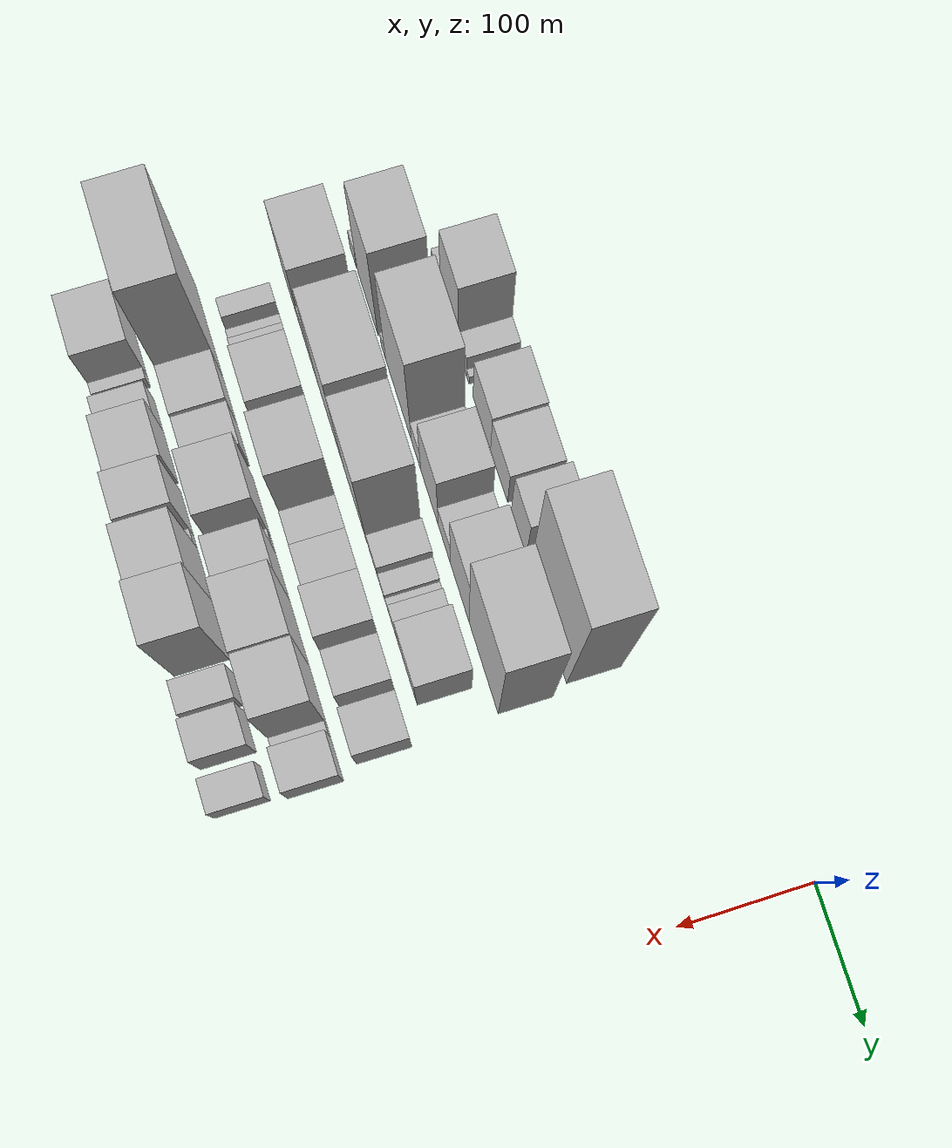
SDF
<sdf version="1.6">
 <world name="default">
  <model name="building_13">
   <static>1</static>
   <pose>100.0000 -490.0989 0 0.000000 0.000000 0.000000</pose>
   <link name="link">
    <pose>0 0 19.50 0 0 0</pose>
    <collision name="collision"><geometry><box><size>40.0000 22.4042 39.0000</size></box></geometry></collision>
    <visual name="visual">
     <cast_shadows>0</cast_shadows>
     <geometry><box><size>40.0000 22.4042 39.0000</size></box></geometry>
     <material>
      <script>
       <uri>model://HANNAS_wall/materials/scripts</uri>
       <uri>model://HANNAS_wall/materials/textures</uri>
       <name>vrc/HANNAS_wall</name>
      </script>
     </material>
    </visual>
   </link>
  </model>
  <model name="building_14">
   <static>1</static>
   <pose>100.0000 -457.5138 0 0.000000 0.000000 0.000000</pose>
   <link name="link">
    <pose>0 0 60.00 0 0 0</pose>
    <collision name="collision"><geometry><box><size>40.0000 42.7660 120.0000</size></box></geometry></collision>
    <visual name="visual">
     <cast_shadows>0</cast_shadows>
     <geometry><box><size>40.0000 42.7660 120.0000</size></box></geometry>
     <material>
      <script>
       <uri>model://HANNAS_wall/materials/scripts</uri>
       <uri>model://HANNAS_wall/materials/textures</uri>
       <name>vrc/HANNAS_wall</name>
      </script>
     </material>
    </visual>
   </link>
  </model>
  <model name="building_15">
   <static>1</static>
   <pose>100.0000 -426.2130 0 0.000000 0.000000 0.000000</pose>
   <link name="link">
    <pose>0 0 19.50 0 0 0</pose>
    <collision name="collision"><geometry><box><size>40.0000 19.8356 39.0000</size></box></geometry></collision>
    <visual name="visual">
     <cast_shadows>0</cast_shadows>
     <geometry><box><size>40.0000 19.8356 39.0000</size></box></geometry>
     <material>
      <script>
       <uri>model://HANNAS_wall/materials/scripts</uri>
       <uri>model://HANNAS_wall/materials/textures</uri>
       <name>vrc/HANNAS_wall</name>
      </script>
     </material>
    </visual>
   </link>
  </model>
  <model name="building_16">
   <static>1</static>
   <pose>100.0000 -413.1849 0 0.000000 0.000000 0.000000</pose>
   <link name="link">
    <pose>0 0 7.50 0 0 0</pose>
    <collision name="collision"><geometry><box><size>40.0000 6.2205 15.0000</size></box></geometry></collision>
    <visual name="visual">
     <cast_shadows>0</cast_shadows>
     <geometry><box><size>40.0000 6.2205 15.0000</size></box></geometry>
     <material>
      <script>
       <uri>model://HANNAS_wall/materials/scripts</uri>
       <uri>model://HANNAS_wall/materials/textures</uri>
       <name>vrc/HANNAS_wall</name>
      </script>
     </material>
    </visual>
   </link>
  </model>
  <model name="building_17">
   <static>1</static>
   <pose>100.0000 -379.1809 0 0.000000 0.000000 0.000000</pose>
   <link name="link">
    <pose>0 0 37.50 0 0 0</pose>
    <collision name="collision"><geometry><box><size>40.0000 41.7877 75.0000</size></box></geometry></collision>
    <visual name="visual">
     <cast_shadows>0</cast_shadows>
     <geometry><box><size>40.0000 41.7877 75.0000</size></box></geometry>
     <material>
      <script>
       <uri>model://HANNAS_wall/materials/scripts</uri>
       <uri>model://HANNAS_wall/materials/textures</uri>
       <name>vrc/HANNAS_wall</name>
      </script>
     </material>
    </visual>
   </link>
  </model>
  <model name="building_18">
   <static>1</static>
   <pose>100.0000 -338.1877 0 0.000000 0.000000 0.000000</pose>
   <link name="link">
    <pose>0 0 34.50 0 0 0</pose>
    <collision name="collision"><geometry><box><size>40.0000 40.1987 69.0000</size></box></geometry></collision>
    <visual name="visual">
     <cast_shadows>0</cast_shadows>
     <geometry><box><size>40.0000 40.1987 69.0000</size></box></geometry>
     <material>
      <script>
       <uri>model://HANNAS_wall/materials/scripts</uri>
       <uri>model://HANNAS_wall/materials/textures</uri>
       <name>vrc/HANNAS_wall</name>
      </script>
     </material>
    </visual>
   </link>
  </model>
  <model name="building_19">
   <static>1</static>
   <pose>100.0000 -292.8029 0 0.000000 0.000000 0.000000</pose>
   <link name="link">
    <pose>0 0 46.50 0 0 0</pose>
    <collision name="collision"><geometry><box><size>40.0000 34.5709 93.0000</size></box></geometry></collision>
    <visual name="visual">
     <cast_shadows>0</cast_shadows>
     <geometry><box><size>40.0000 34.5709 93.0000</size></box></geometry>
     <material>
      <script>
       <uri>model://HANNAS_wall/materials/scripts</uri>
       <uri>model://HANNAS_wall/materials/textures</uri>
       <name>vrc/HANNAS_wall</name>
      </script>
     </material>
    </visual>
   </link>
  </model>
  <model name="building_20">
   <static>1</static>
   <pose>100.0000 -270.9125 0 0.000000 0.000000 0.000000</pose>
   <link name="link">
    <pose>0 0 10.50 0 0 0</pose>
    <collision name="collision"><geometry><box><size>40.0000 9.2098 21.0000</size></box></geometry></collision>
    <visual name="visual">
     <cast_shadows>0</cast_shadows>
     <geometry><box><size>40.0000 9.2098 21.0000</size></box></geometry>
     <material>
      <script>
       <uri>model://HANNAS_wall/materials/scripts</uri>
       <uri>model://HANNAS_wall/materials/textures</uri>
       <name>vrc/HANNAS_wall</name>
      </script>
     </material>
    </visual>
   </link>
  </model>
  <model name="building_21">
   <static>1</static>
   <pose>100.0000 -223.9992 0 0.000000 0.000000 0.000000</pose>
   <link name="link">
    <pose>0 0 112.50 0 0 0</pose>
    <collision name="collision"><geometry><box><size>40.0000 84.6168 225.0000</size></box></geometry></collision>
    <visual name="visual">
     <cast_shadows>0</cast_shadows>
     <geometry><box><size>40.0000 84.6168 225.0000</size></box></geometry>
     <material>
      <script>
       <uri>model://HANNAS_wall/materials/scripts</uri>
       <uri>model://HANNAS_wall/materials/textures</uri>
       <name>vrc/HANNAS_wall</name>
      </script>
     </material>
    </visual>
   </link>
  </model>
  <model name="building_65">
   <static>1</static>
   <pose>152.0000 -527.2668 0 0.000000 0.000000 0.000000</pose>
   <link name="link">
    <pose>0 0 15.00 0 0 0</pose>
    <collision name="collision"><geometry><box><size>40.0000 16.8397 30.0000</size></box></geometry></collision>
    <visual name="visual">
     <cast_shadows>0</cast_shadows>
     <geometry><box><size>40.0000 16.8397 30.0000</size></box></geometry>
     <material>
      <script>
       <uri>model://HANNAS_wall/materials/scripts</uri>
       <uri>model://HANNAS_wall/materials/textures</uri>
       <name>vrc/HANNAS_wall</name>
      </script>
     </material>
    </visual>
   </link>
  </model>
  <model name="building_66">
   <static>1</static>
   <pose>152.0000 -490.2607 0 0.000000 0.000000 0.000000</pose>
   <link name="link">
    <pose>0 0 75.00 0 0 0</pose>
    <collision name="collision"><geometry><box><size>40.0000 51.1725 150.0000</size></box></geometry></collision>
    <visual name="visual">
     <cast_shadows>0</cast_shadows>
     <geometry><box><size>40.0000 51.1725 150.0000</size></box></geometry>
     <material>
      <script>
       <uri>model://HANNAS_wall/materials/scripts</uri>
       <uri>model://HANNAS_wall/materials/textures</uri>
       <name>vrc/HANNAS_wall</name>
      </script>
     </material>
    </visual>
   </link>
  </model>
  <model name="building_67">
   <static>1</static>
   <pose>152.0000 -450.9133 0 0.000000 0.000000 0.000000</pose>
   <link name="link">
    <pose>0 0 13.50 0 0 0</pose>
    <collision name="collision"><geometry><box><size>40.0000 11.5222 27.0000</size></box></geometry></collision>
    <visual name="visual">
     <cast_shadows>0</cast_shadows>
     <geometry><box><size>40.0000 11.5222 27.0000</size></box></geometry>
     <material>
      <script>
       <uri>model://HANNAS_wall/materials/scripts</uri>
       <uri>model://HANNAS_wall/materials/textures</uri>
       <name>vrc/HANNAS_wall</name>
      </script>
     </material>
    </visual>
   </link>
  </model>
  <model name="building_68">
   <static>1</static>
   <pose>152.0000 -413.4610 0 0.000000 0.000000 0.000000</pose>
   <link name="link">
    <pose>0 0 82.50 0 0 0</pose>
    <collision name="collision"><geometry><box><size>40.0000 63.3824 165.0000</size></box></geometry></collision>
    <visual name="visual">
     <cast_shadows>0</cast_shadows>
     <geometry><box><size>40.0000 63.3824 165.0000</size></box></geometry>
     <material>
      <script>
       <uri>model://HANNAS_wall/materials/scripts</uri>
       <uri>model://HANNAS_wall/materials/textures</uri>
       <name>vrc/HANNAS_wall</name>
      </script>
     </material>
    </visual>
   </link>
  </model>
  <model name="building_69">
   <static>1</static>
   <pose>152.0000 -370.2646 0 0.000000 0.000000 0.000000</pose>
   <link name="link">
    <pose>0 0 22.50 0 0 0</pose>
    <collision name="collision"><geometry><box><size>40.0000 23.0104 45.0000</size></box></geometry></collision>
    <visual name="visual">
     <cast_shadows>0</cast_shadows>
     <geometry><box><size>40.0000 23.0104 45.0000</size></box></geometry>
     <material>
      <script>
       <uri>model://HANNAS_wall/materials/scripts</uri>
       <uri>model://HANNAS_wall/materials/textures</uri>
       <name>vrc/HANNAS_wall</name>
      </script>
     </material>
    </visual>
   </link>
  </model>
  <model name="building_70">
   <static>1</static>
   <pose>152.0000 -337.6851 0 0.000000 0.000000 0.000000</pose>
   <link name="link">
    <pose>0 0 57.00 0 0 0</pose>
    <collision name="collision"><geometry><box><size>40.0000 42.1486 114.0000</size></box></geometry></collision>
    <visual name="visual">
     <cast_shadows>0</cast_shadows>
     <geometry><box><size>40.0000 42.1486 114.0000</size></box></geometry>
     <material>
      <script>
       <uri>model://HANNAS_wall/materials/scripts</uri>
       <uri>model://HANNAS_wall/materials/textures</uri>
       <name>vrc/HANNAS_wall</name>
      </script>
     </material>
    </visual>
   </link>
  </model>
  <model name="building_71">
   <static>1</static>
   <pose>152.0000 -301.9021 0 0.000000 0.000000 0.000000</pose>
   <link name="link">
    <pose>0 0 25.50 0 0 0</pose>
    <collision name="collision"><geometry><box><size>40.0000 29.4174 51.0000</size></box></geometry></collision>
    <visual name="visual">
     <cast_shadows>0</cast_shadows>
     <geometry><box><size>40.0000 29.4174 51.0000</size></box></geometry>
     <material>
      <script>
       <uri>model://HANNAS_wall/materials/scripts</uri>
       <uri>model://HANNAS_wall/materials/textures</uri>
       <name>vrc/HANNAS_wall</name>
      </script>
     </material>
    </visual>
   </link>
  </model>
  <model name="building_72">
   <static>1</static>
   <pose>152.0000 -265.4291 0 0.000000 0.000000 0.000000</pose>
   <link name="link">
    <pose>0 0 63.00 0 0 0</pose>
    <collision name="collision"><geometry><box><size>40.0000 43.5286 126.0000</size></box></geometry></collision>
    <visual name="visual">
     <cast_shadows>0</cast_shadows>
     <geometry><box><size>40.0000 43.5286 126.0000</size></box></geometry>
     <material>
      <script>
       <uri>model://HANNAS_wall/materials/scripts</uri>
       <uri>model://HANNAS_wall/materials/textures</uri>
       <name>vrc/HANNAS_wall</name>
      </script>
     </material>
    </visual>
   </link>
  </model>
  <model name="building_73">
   <static>1</static>
   <pose>152.0000 -209.6130 0 0.000000 0.000000 0.000000</pose>
   <link name="link">
    <pose>0 0 99.00 0 0 0</pose>
    <collision name="collision"><geometry><box><size>40.0000 68.1036 198.0000</size></box></geometry></collision>
    <visual name="visual">
     <cast_shadows>0</cast_shadows>
     <geometry><box><size>40.0000 68.1036 198.0000</size></box></geometry>
     <material>
      <script>
       <uri>model://HANNAS_wall/materials/scripts</uri>
       <uri>model://HANNAS_wall/materials/textures</uri>
       <name>vrc/HANNAS_wall</name>
      </script>
     </material>
    </visual>
   </link>
  </model>
  <model name="building_114">
   <static>1</static>
   <pose>204.0000 -502.0832 0 0.000000 0.000000 0.000000</pose>
   <link name="link">
    <pose>0 0 66.00 0 0 0</pose>
    <collision name="collision"><geometry><box><size>40.0000 50.5782 132.0000</size></box></geometry></collision>
    <visual name="visual">
     <cast_shadows>0</cast_shadows>
     <geometry><box><size>40.0000 50.5782 132.0000</size></box></geometry>
     <material>
      <script>
       <uri>model://HANNAS_wall/materials/scripts</uri>
       <uri>model://HANNAS_wall/materials/textures</uri>
       <name>vrc/HANNAS_wall</name>
      </script>
     </material>
    </visual>
   </link>
  </model>
  <model name="building_115">
   <static>1</static>
   <pose>204.0000 -458.7430 0 0.000000 0.000000 0.000000</pose>
   <link name="link">
    <pose>0 0 34.50 0 0 0</pose>
    <collision name="collision"><geometry><box><size>40.0000 36.1023 69.0000</size></box></geometry></collision>
    <visual name="visual">
     <cast_shadows>0</cast_shadows>
     <geometry><box><size>40.0000 36.1023 69.0000</size></box></geometry>
     <material>
      <script>
       <uri>model://HANNAS_wall/materials/scripts</uri>
       <uri>model://HANNAS_wall/materials/textures</uri>
       <name>vrc/HANNAS_wall</name>
      </script>
     </material>
    </visual>
   </link>
  </model>
  <model name="building_116">
   <static>1</static>
   <pose>204.0000 -408.4832 0 0.000000 0.000000 0.000000</pose>
   <link name="link">
    <pose>0 0 94.50 0 0 0</pose>
    <collision name="collision"><geometry><box><size>40.0000 64.4172 189.0000</size></box></geometry></collision>
    <visual name="visual">
     <cast_shadows>0</cast_shadows>
     <geometry><box><size>40.0000 64.4172 189.0000</size></box></geometry>
     <material>
      <script>
       <uri>model://HANNAS_wall/materials/scripts</uri>
       <uri>model://HANNAS_wall/materials/textures</uri>
       <name>vrc/HANNAS_wall</name>
      </script>
     </material>
    </visual>
   </link>
  </model>
  <model name="building_117">
   <static>1</static>
   <pose>204.0000 -347.6463 0 0.000000 0.000000 0.000000</pose>
   <link name="link">
    <pose>0 0 84.00 0 0 0</pose>
    <collision name="collision"><geometry><box><size>40.0000 57.2566 168.0000</size></box></geometry></collision>
    <visual name="visual">
     <cast_shadows>0</cast_shadows>
     <geometry><box><size>40.0000 57.2566 168.0000</size></box></geometry>
     <material>
      <script>
       <uri>model://HANNAS_wall/materials/scripts</uri>
       <uri>model://HANNAS_wall/materials/textures</uri>
       <name>vrc/HANNAS_wall</name>
      </script>
     </material>
    </visual>
   </link>
  </model>
  <model name="building_118">
   <static>1</static>
   <pose>204.0000 -301.7922 0 0.000000 0.000000 0.000000</pose>
   <link name="link">
    <pose>0 0 24.00 0 0 0</pose>
    <collision name="collision"><geometry><box><size>40.0000 24.4516 48.0000</size></box></geometry></collision>
    <visual name="visual">
     <cast_shadows>0</cast_shadows>
     <geometry><box><size>40.0000 24.4516 48.0000</size></box></geometry>
     <material>
      <script>
       <uri>model://HANNAS_wall/materials/scripts</uri>
       <uri>model://HANNAS_wall/materials/textures</uri>
       <name>vrc/HANNAS_wall</name>
      </script>
     </material>
    </visual>
   </link>
  </model>
  <model name="building_119">
   <static>1</static>
   <pose>204.0000 -281.4975 0 0.000000 0.000000 0.000000</pose>
   <link name="link">
    <pose>0 0 15.00 0 0 0</pose>
    <collision name="collision"><geometry><box><size>40.0000 16.1377 30.0000</size></box></geometry></collision>
    <visual name="visual">
     <cast_shadows>0</cast_shadows>
     <geometry><box><size>40.0000 16.1377 30.0000</size></box></geometry>
     <material>
      <script>
       <uri>model://HANNAS_wall/materials/scripts</uri>
       <uri>model://HANNAS_wall/materials/textures</uri>
       <name>vrc/HANNAS_wall</name>
      </script>
     </material>
    </visual>
   </link>
  </model>
  <model name="building_120">
   <static>1</static>
   <pose>204.0000 -269.1487 0 0.000000 0.000000 0.000000</pose>
   <link name="link">
    <pose>0 0 10.50 0 0 0</pose>
    <collision name="collision"><geometry><box><size>40.0000 8.5601 21.0000</size></box></geometry></collision>
    <visual name="visual">
     <cast_shadows>0</cast_shadows>
     <geometry><box><size>40.0000 8.5601 21.0000</size></box></geometry>
     <material>
      <script>
       <uri>model://HANNAS_wall/materials/scripts</uri>
       <uri>model://HANNAS_wall/materials/textures</uri>
       <name>vrc/HANNAS_wall</name>
      </script>
     </material>
    </visual>
   </link>
  </model>
  <model name="building_121">
   <static>1</static>
   <pose>204.0000 -254.1256 0 0.000000 0.000000 0.000000</pose>
   <link name="link">
    <pose>0 0 19.50 0 0 0</pose>
    <collision name="collision"><geometry><box><size>40.0000 21.4861 39.0000</size></box></geometry></collision>
    <visual name="visual">
     <cast_shadows>0</cast_shadows>
     <geometry><box><size>40.0000 21.4861 39.0000</size></box></geometry>
     <material>
      <script>
       <uri>model://HANNAS_wall/materials/scripts</uri>
       <uri>model://HANNAS_wall/materials/textures</uri>
       <name>vrc/HANNAS_wall</name>
      </script>
     </material>
    </visual>
   </link>
  </model>
  <model name="building_122">
   <static>1</static>
   <pose>204.0000 -220.7979 0 0.000000 0.000000 0.000000</pose>
   <link name="link">
    <pose>0 0 45.00 0 0 0</pose>
    <collision name="collision"><geometry><box><size>40.0000 45.1694 90.0000</size></box></geometry></collision>
    <visual name="visual">
     <cast_shadows>0</cast_shadows>
     <geometry><box><size>40.0000 45.1694 90.0000</size></box></geometry>
     <material>
      <script>
       <uri>model://HANNAS_wall/materials/scripts</uri>
       <uri>model://HANNAS_wall/materials/textures</uri>
       <name>vrc/HANNAS_wall</name>
      </script>
     </material>
    </visual>
   </link>
  </model>
  <model name="building_164">
   <static>1</static>
   <pose>256.0000 -507.3492 0 0.000000 0.000000 0.000000</pose>
   <link name="link">
    <pose>0 0 15.00 0 0 0</pose>
    <collision name="collision"><geometry><box><size>40.0000 15.1289 30.0000</size></box></geometry></collision>
    <visual name="visual">
     <cast_shadows>0</cast_shadows>
     <geometry><box><size>40.0000 15.1289 30.0000</size></box></geometry>
     <material>
      <script>
       <uri>model://HANNAS_wall/materials/scripts</uri>
       <uri>model://HANNAS_wall/materials/textures</uri>
       <name>vrc/HANNAS_wall</name>
      </script>
     </material>
    </visual>
   </link>
  </model>
  <model name="building_165">
   <static>1</static>
   <pose>256.0000 -487.1027 0 0.000000 0.000000 0.000000</pose>
   <link name="link">
    <pose>0 0 12.00 0 0 0</pose>
    <collision name="collision"><geometry><box><size>40.0000 11.3641 24.0000</size></box></geometry></collision>
    <visual name="visual">
     <cast_shadows>0</cast_shadows>
     <geometry><box><size>40.0000 11.3641 24.0000</size></box></geometry>
     <material>
      <script>
       <uri>model://HANNAS_wall/materials/scripts</uri>
       <uri>model://HANNAS_wall/materials/textures</uri>
       <name>vrc/HANNAS_wall</name>
      </script>
     </material>
    </visual>
   </link>
  </model>
  <model name="building_166">
   <static>1</static>
   <pose>256.0000 -471.8944 0 0.000000 0.000000 0.000000</pose>
   <link name="link">
    <pose>0 0 18.00 0 0 0</pose>
    <collision name="collision"><geometry><box><size>40.0000 19.0526 36.0000</size></box></geometry></collision>
    <visual name="visual">
     <cast_shadows>0</cast_shadows>
     <geometry><box><size>40.0000 19.0526 36.0000</size></box></geometry>
     <material>
      <script>
       <uri>model://HANNAS_wall/materials/scripts</uri>
       <uri>model://HANNAS_wall/materials/textures</uri>
       <name>vrc/HANNAS_wall</name>
      </script>
     </material>
    </visual>
   </link>
  </model>
  <model name="building_167">
   <static>1</static>
   <pose>256.0000 -441.4231 0 0.000000 0.000000 0.000000</pose>
   <link name="link">
    <pose>0 0 36.00 0 0 0</pose>
    <collision name="collision"><geometry><box><size>40.0000 41.8899 72.0000</size></box></geometry></collision>
    <visual name="visual">
     <cast_shadows>0</cast_shadows>
     <geometry><box><size>40.0000 41.8899 72.0000</size></box></geometry>
     <material>
      <script>
       <uri>model://HANNAS_wall/materials/scripts</uri>
       <uri>model://HANNAS_wall/materials/textures</uri>
       <name>vrc/HANNAS_wall</name>
      </script>
     </material>
    </visual>
   </link>
  </model>
  <model name="building_168">
   <static>1</static>
   <pose>256.0000 -412.6319 0 0.000000 0.000000 0.000000</pose>
   <link name="link">
    <pose>0 0 15.00 0 0 0</pose>
    <collision name="collision"><geometry><box><size>40.0000 15.6926 30.0000</size></box></geometry></collision>
    <visual name="visual">
     <cast_shadows>0</cast_shadows>
     <geometry><box><size>40.0000 15.6926 30.0000</size></box></geometry>
     <material>
      <script>
       <uri>model://HANNAS_wall/materials/scripts</uri>
       <uri>model://HANNAS_wall/materials/textures</uri>
       <name>vrc/HANNAS_wall</name>
      </script>
     </material>
    </visual>
   </link>
  </model>
  <model name="building_169">
   <static>1</static>
   <pose>256.0000 -399.7472 0 0.000000 0.000000 0.000000</pose>
   <link name="link">
    <pose>0 0 10.50 0 0 0</pose>
    <collision name="collision"><geometry><box><size>40.0000 10.0766 21.0000</size></box></geometry></collision>
    <visual name="visual">
     <cast_shadows>0</cast_shadows>
     <geometry><box><size>40.0000 10.0766 21.0000</size></box></geometry>
     <material>
      <script>
       <uri>model://HANNAS_wall/materials/scripts</uri>
       <uri>model://HANNAS_wall/materials/textures</uri>
       <name>vrc/HANNAS_wall</name>
      </script>
     </material>
    </visual>
   </link>
  </model>
  <model name="building_170">
   <static>1</static>
   <pose>256.0000 -372.6084 0 0.000000 0.000000 0.000000</pose>
   <link name="link">
    <pose>0 0 64.50 0 0 0</pose>
    <collision name="collision"><geometry><box><size>40.0000 44.2011 129.0000</size></box></geometry></collision>
    <visual name="visual">
     <cast_shadows>0</cast_shadows>
     <geometry><box><size>40.0000 44.2011 129.0000</size></box></geometry>
     <material>
      <script>
       <uri>model://HANNAS_wall/materials/scripts</uri>
       <uri>model://HANNAS_wall/materials/textures</uri>
       <name>vrc/HANNAS_wall</name>
      </script>
     </material>
    </visual>
   </link>
  </model>
  <model name="building_171">
   <static>1</static>
   <pose>256.0000 -334.9601 0 0.000000 0.000000 0.000000</pose>
   <link name="link">
    <pose>0 0 24.00 0 0 0</pose>
    <collision name="collision"><geometry><box><size>40.0000 25.0955 48.0000</size></box></geometry></collision>
    <visual name="visual">
     <cast_shadows>0</cast_shadows>
     <geometry><box><size>40.0000 25.0955 48.0000</size></box></geometry>
     <material>
      <script>
       <uri>model://HANNAS_wall/materials/scripts</uri>
       <uri>model://HANNAS_wall/materials/textures</uri>
       <name>vrc/HANNAS_wall</name>
      </script>
     </material>
    </visual>
   </link>
  </model>
  <model name="building_172">
   <static>1</static>
   <pose>256.0000 -307.2766 0 0.000000 0.000000 0.000000</pose>
   <link name="link">
    <pose>0 0 25.50 0 0 0</pose>
    <collision name="collision"><geometry><box><size>40.0000 30.2715 51.0000</size></box></geometry></collision>
    <visual name="visual">
     <cast_shadows>0</cast_shadows>
     <geometry><box><size>40.0000 30.2715 51.0000</size></box></geometry>
     <material>
      <script>
       <uri>model://HANNAS_wall/materials/scripts</uri>
       <uri>model://HANNAS_wall/materials/textures</uri>
       <name>vrc/HANNAS_wall</name>
      </script>
     </material>
    </visual>
   </link>
  </model>
  <model name="building_173">
   <static>1</static>
   <pose>256.0000 -286.3559 0 0.000000 0.000000 0.000000</pose>
   <link name="link">
    <pose>0 0 12.00 0 0 0</pose>
    <collision name="collision"><geometry><box><size>40.0000 11.5697 24.0000</size></box></geometry></collision>
    <visual name="visual">
     <cast_shadows>0</cast_shadows>
     <geometry><box><size>40.0000 11.5697 24.0000</size></box></geometry>
     <material>
      <script>
       <uri>model://HANNAS_wall/materials/scripts</uri>
       <uri>model://HANNAS_wall/materials/textures</uri>
       <name>vrc/HANNAS_wall</name>
      </script>
     </material>
    </visual>
   </link>
  </model>
  <model name="building_174">
   <static>1</static>
   <pose>256.0000 -263.1713 0 0.000000 0.000000 0.000000</pose>
   <link name="link">
    <pose>0 0 54.00 0 0 0</pose>
    <collision name="collision"><geometry><box><size>40.0000 34.7995 108.0000</size></box></geometry></collision>
    <visual name="visual">
     <cast_shadows>0</cast_shadows>
     <geometry><box><size>40.0000 34.7995 108.0000</size></box></geometry>
     <material>
      <script>
       <uri>model://HANNAS_wall/materials/scripts</uri>
       <uri>model://HANNAS_wall/materials/textures</uri>
       <name>vrc/HANNAS_wall</name>
      </script>
     </material>
    </visual>
   </link>
  </model>
  <model name="building_175">
   <static>1</static>
   <pose>256.0000 -229.3556 0 0.000000 0.000000 0.000000</pose>
   <link name="link">
    <pose>0 0 28.50 0 0 0</pose>
    <collision name="collision"><geometry><box><size>40.0000 32.8320 57.0000</size></box></geometry></collision>
    <visual name="visual">
     <cast_shadows>0</cast_shadows>
     <geometry><box><size>40.0000 32.8320 57.0000</size></box></geometry>
     <material>
      <script>
       <uri>model://HANNAS_wall/materials/scripts</uri>
       <uri>model://HANNAS_wall/materials/textures</uri>
       <name>vrc/HANNAS_wall</name>
      </script>
     </material>
    </visual>
   </link>
  </model>
  <model name="building_176">
   <static>1</static>
   <pose>256.0000 -188.1130 0 0.000000 0.000000 0.000000</pose>
   <link name="link">
    <pose>0 0 30.00 0 0 0</pose>
    <collision name="collision"><geometry><box><size>40.0000 33.6531 60.0000</size></box></geometry></collision>
    <visual name="visual">
     <cast_shadows>0</cast_shadows>
     <geometry><box><size>40.0000 33.6531 60.0000</size></box></geometry>
     <material>
      <script>
       <uri>model://HANNAS_wall/materials/scripts</uri>
       <uri>model://HANNAS_wall/materials/textures</uri>
       <name>vrc/HANNAS_wall</name>
      </script>
     </material>
    </visual>
   </link>
  </model>
  <model name="building_215">
   <static>1</static>
   <pose>308.0000 -504.0778 0 0.000000 0.000000 0.000000</pose>
   <link name="link">
    <pose>0 0 99.00 0 0 0</pose>
    <collision name="collision"><geometry><box><size>40.0000 73.9716 198.0000</size></box></geometry></collision>
    <visual name="visual">
     <cast_shadows>0</cast_shadows>
     <geometry><box><size>40.0000 73.9716 198.0000</size></box></geometry>
     <material>
      <script>
       <uri>model://HANNAS_wall/materials/scripts</uri>
       <uri>model://HANNAS_wall/materials/textures</uri>
       <name>vrc/HANNAS_wall</name>
      </script>
     </material>
    </visual>
   </link>
  </model>
  <model name="building_216">
   <static>1</static>
   <pose>308.0000 -448.9069 0 0.000000 0.000000 0.000000</pose>
   <link name="link">
    <pose>0 0 31.50 0 0 0</pose>
    <collision name="collision"><geometry><box><size>40.0000 36.3702 63.0000</size></box></geometry></collision>
    <visual name="visual">
     <cast_shadows>0</cast_shadows>
     <geometry><box><size>40.0000 36.3702 63.0000</size></box></geometry>
     <material>
      <script>
       <uri>model://HANNAS_wall/materials/scripts</uri>
       <uri>model://HANNAS_wall/materials/textures</uri>
       <name>vrc/HANNAS_wall</name>
      </script>
     </material>
    </visual>
   </link>
  </model>
  <model name="building_217">
   <static>1</static>
   <pose>308.0000 -414.5300 0 0.000000 0.000000 0.000000</pose>
   <link name="link">
    <pose>0 0 28.50 0 0 0</pose>
    <collision name="collision"><geometry><box><size>40.0000 32.3836 57.0000</size></box></geometry></collision>
    <visual name="visual">
     <cast_shadows>0</cast_shadows>
     <geometry><box><size>40.0000 32.3836 57.0000</size></box></geometry>
     <material>
      <script>
       <uri>model://HANNAS_wall/materials/scripts</uri>
       <uri>model://HANNAS_wall/materials/textures</uri>
       <name>vrc/HANNAS_wall</name>
      </script>
     </material>
    </visual>
   </link>
  </model>
  <model name="building_218">
   <static>1</static>
   <pose>308.0000 -366.5421 0 0.000000 0.000000 0.000000</pose>
   <link name="link">
    <pose>0 0 57.00 0 0 0</pose>
    <collision name="collision"><geometry><box><size>40.0000 45.5922 114.0000</size></box></geometry></collision>
    <visual name="visual">
     <cast_shadows>0</cast_shadows>
     <geometry><box><size>40.0000 45.5922 114.0000</size></box></geometry>
     <material>
      <script>
       <uri>model://HANNAS_wall/materials/scripts</uri>
       <uri>model://HANNAS_wall/materials/textures</uri>
       <name>vrc/HANNAS_wall</name>
      </script>
     </material>
    </visual>
   </link>
  </model>
  <model name="building_219">
   <static>1</static>
   <pose>308.0000 -337.7683 0 0.000000 0.000000 0.000000</pose>
   <link name="link">
    <pose>0 0 13.50 0 0 0</pose>
    <collision name="collision"><geometry><box><size>40.0000 11.9553 27.0000</size></box></geometry></collision>
    <visual name="visual">
     <cast_shadows>0</cast_shadows>
     <geometry><box><size>40.0000 11.9553 27.0000</size></box></geometry>
     <material>
      <script>
       <uri>model://HANNAS_wall/materials/scripts</uri>
       <uri>model://HANNAS_wall/materials/textures</uri>
       <name>vrc/HANNAS_wall</name>
      </script>
     </material>
    </visual>
   </link>
  </model>
  <model name="building_220">
   <static>1</static>
   <pose>308.0000 -313.9314 0 0.000000 0.000000 0.000000</pose>
   <link name="link">
    <pose>0 0 52.50 0 0 0</pose>
    <collision name="collision"><geometry><box><size>40.0000 35.7184 105.0000</size></box></geometry></collision>
    <visual name="visual">
     <cast_shadows>0</cast_shadows>
     <geometry><box><size>40.0000 35.7184 105.0000</size></box></geometry>
     <material>
      <script>
       <uri>model://HANNAS_wall/materials/scripts</uri>
       <uri>model://HANNAS_wall/materials/textures</uri>
       <name>vrc/HANNAS_wall</name>
      </script>
     </material>
    </visual>
   </link>
  </model>
  <model name="building_221">
   <static>1</static>
   <pose>308.0000 -271.4954 0 0.000000 0.000000 0.000000</pose>
   <link name="link">
    <pose>0 0 69.00 0 0 0</pose>
    <collision name="collision"><geometry><box><size>40.0000 49.1536 138.0000</size></box></geometry></collision>
    <visual name="visual">
     <cast_shadows>0</cast_shadows>
     <geometry><box><size>40.0000 49.1536 138.0000</size></box></geometry>
     <material>
      <script>
       <uri>model://HANNAS_wall/materials/scripts</uri>
       <uri>model://HANNAS_wall/materials/textures</uri>
       <name>vrc/HANNAS_wall</name>
      </script>
     </material>
    </visual>
   </link>
  </model>
  <model name="building_222">
   <static>1</static>
   <pose>308.0000 -225.4730 0 0.000000 0.000000 0.000000</pose>
   <link name="link">
    <pose>0 0 66.00 0 0 0</pose>
    <collision name="collision"><geometry><box><size>40.0000 42.8912 132.0000</size></box></geometry></collision>
    <visual name="visual">
     <cast_shadows>0</cast_shadows>
     <geometry><box><size>40.0000 42.8912 132.0000</size></box></geometry>
     <material>
      <script>
       <uri>model://HANNAS_wall/materials/scripts</uri>
       <uri>model://HANNAS_wall/materials/textures</uri>
       <name>vrc/HANNAS_wall</name>
      </script>
     </material>
    </visual>
   </link>
  </model>
  <model name="building_223">
   <static>1</static>
   <pose>308.0000 -199.1241 0 0.000000 0.000000 0.000000</pose>
   <link name="link">
    <pose>0 0 12.00 0 0 0</pose>
    <collision name="collision"><geometry><box><size>40.0000 9.8067 24.0000</size></box></geometry></collision>
    <visual name="visual">
     <cast_shadows>0</cast_shadows>
     <geometry><box><size>40.0000 9.8067 24.0000</size></box></geometry>
     <material>
      <script>
       <uri>model://HANNAS_wall/materials/scripts</uri>
       <uri>model://HANNAS_wall/materials/textures</uri>
       <name>vrc/HANNAS_wall</name>
      </script>
     </material>
    </visual>
   </link>
  </model>
  <model name="building_224">
   <static>1</static>
   <pose>308.0000 -178.3978 0 0.000000 0.000000 0.000000</pose>
   <link name="link">
    <pose>0 0 27.00 0 0 0</pose>
    <collision name="collision"><geometry><box><size>40.0000 31.6459 54.0000</size></box></geometry></collision>
    <visual name="visual">
     <cast_shadows>0</cast_shadows>
     <geometry><box><size>40.0000 31.6459 54.0000</size></box></geometry>
     <material>
      <script>
       <uri>model://HANNAS_wall/materials/scripts</uri>
       <uri>model://HANNAS_wall/materials/textures</uri>
       <name>vrc/HANNAS_wall</name>
      </script>
     </material>
    </visual>
   </link>
  </model>
  <model name="building_262">
   <static>1</static>
   <pose>360.0000 -507.3925 0 0.000000 0.000000 0.000000</pose>
   <link name="link">
    <pose>0 0 39.00 0 0 0</pose>
    <collision name="collision"><geometry><box><size>40.0000 45.2707 78.0000</size></box></geometry></collision>
    <visual name="visual">
     <cast_shadows>0</cast_shadows>
     <geometry><box><size>40.0000 45.2707 78.0000</size></box></geometry>
     <material>
      <script>
       <uri>model://HANNAS_wall/materials/scripts</uri>
       <uri>model://HANNAS_wall/materials/textures</uri>
       <name>vrc/HANNAS_wall</name>
      </script>
     </material>
    </visual>
   </link>
  </model>
  <model name="building_263">
   <static>1</static>
   <pose>360.0000 -480.3713 0 0.000000 0.000000 0.000000</pose>
   <link name="link">
    <pose>0 0 10.50 0 0 0</pose>
    <collision name="collision"><geometry><box><size>40.0000 8.7716 21.0000</size></box></geometry></collision>
    <visual name="visual">
     <cast_shadows>0</cast_shadows>
     <geometry><box><size>40.0000 8.7716 21.0000</size></box></geometry>
     <material>
      <script>
       <uri>model://HANNAS_wall/materials/scripts</uri>
       <uri>model://HANNAS_wall/materials/textures</uri>
       <name>vrc/HANNAS_wall</name>
      </script>
     </material>
    </visual>
   </link>
  </model>
  <model name="building_264">
   <static>1</static>
   <pose>360.0000 -454.1239 0 0.000000 0.000000 0.000000</pose>
   <link name="link">
    <pose>0 0 22.50 0 0 0</pose>
    <collision name="collision"><geometry><box><size>40.0000 23.7232 45.0000</size></box></geometry></collision>
    <visual name="visual">
     <cast_shadows>0</cast_shadows>
     <geometry><box><size>40.0000 23.7232 45.0000</size></box></geometry>
     <material>
      <script>
       <uri>model://HANNAS_wall/materials/scripts</uri>
       <uri>model://HANNAS_wall/materials/textures</uri>
       <name>vrc/HANNAS_wall</name>
      </script>
     </material>
    </visual>
   </link>
  </model>
  <model name="building_265">
   <static>1</static>
   <pose>360.0000 -421.7075 0 0.000000 0.000000 0.000000</pose>
   <link name="link">
    <pose>0 0 37.50 0 0 0</pose>
    <collision name="collision"><geometry><box><size>40.0000 41.1096 75.0000</size></box></geometry></collision>
    <visual name="visual">
     <cast_shadows>0</cast_shadows>
     <geometry><box><size>40.0000 41.1096 75.0000</size></box></geometry>
     <material>
      <script>
       <uri>model://HANNAS_wall/materials/scripts</uri>
       <uri>model://HANNAS_wall/materials/textures</uri>
       <name>vrc/HANNAS_wall</name>
      </script>
     </material>
    </visual>
   </link>
  </model>
  <model name="building_266">
   <static>1</static>
   <pose>360.0000 -378.3512 0 0.000000 0.000000 0.000000</pose>
   <link name="link">
    <pose>0 0 48.00 0 0 0</pose>
    <collision name="collision"><geometry><box><size>40.0000 33.6029 96.0000</size></box></geometry></collision>
    <visual name="visual">
     <cast_shadows>0</cast_shadows>
     <geometry><box><size>40.0000 33.6029 96.0000</size></box></geometry>
     <material>
      <script>
       <uri>model://HANNAS_wall/materials/scripts</uri>
       <uri>model://HANNAS_wall/materials/textures</uri>
       <name>vrc/HANNAS_wall</name>
      </script>
     </material>
    </visual>
   </link>
  </model>
  <model name="building_267">
   <static>1</static>
   <pose>360.0000 -356.5868 0 0.000000 0.000000 0.000000</pose>
   <link name="link">
    <pose>0 0 10.50 0 0 0</pose>
    <collision name="collision"><geometry><box><size>40.0000 9.9259 21.0000</size></box></geometry></collision>
    <visual name="visual">
     <cast_shadows>0</cast_shadows>
     <geometry><box><size>40.0000 9.9259 21.0000</size></box></geometry>
     <material>
      <script>
       <uri>model://HANNAS_wall/materials/scripts</uri>
       <uri>model://HANNAS_wall/materials/textures</uri>
       <name>vrc/HANNAS_wall</name>
      </script>
     </material>
    </visual>
   </link>
  </model>
  <model name="building_268">
   <static>1</static>
   <pose>360.0000 -331.3369 0 0.000000 0.000000 0.000000</pose>
   <link name="link">
    <pose>0 0 61.50 0 0 0</pose>
    <collision name="collision"><geometry><box><size>40.0000 40.5739 123.0000</size></box></geometry></collision>
    <visual name="visual">
     <cast_shadows>0</cast_shadows>
     <geometry><box><size>40.0000 40.5739 123.0000</size></box></geometry>
     <material>
      <script>
       <uri>model://HANNAS_wall/materials/scripts</uri>
       <uri>model://HANNAS_wall/materials/textures</uri>
       <name>vrc/HANNAS_wall</name>
      </script>
     </material>
    </visual>
   </link>
  </model>
  <model name="building_269">
   <static>1</static>
   <pose>360.0000 -289.5024 0 0.000000 0.000000 0.000000</pose>
   <link name="link">
    <pose>0 0 67.50 0 0 0</pose>
    <collision name="collision"><geometry><box><size>40.0000 43.0951 135.0000</size></box></geometry></collision>
    <visual name="visual">
     <cast_shadows>0</cast_shadows>
     <geometry><box><size>40.0000 43.0951 135.0000</size></box></geometry>
     <material>
      <script>
       <uri>model://HANNAS_wall/materials/scripts</uri>
       <uri>model://HANNAS_wall/materials/textures</uri>
       <name>vrc/HANNAS_wall</name>
      </script>
     </material>
    </visual>
   </link>
  </model>
  <model name="building_270">
   <static>1</static>
   <pose>360.0000 -245.8260 0 0.000000 0.000000 0.000000</pose>
   <link name="link">
    <pose>0 0 24.00 0 0 0</pose>
    <collision name="collision"><geometry><box><size>40.0000 24.2577 48.0000</size></box></geometry></collision>
    <visual name="visual">
     <cast_shadows>0</cast_shadows>
     <geometry><box><size>40.0000 24.2577 48.0000</size></box></geometry>
     <material>
      <script>
       <uri>model://HANNAS_wall/materials/scripts</uri>
       <uri>model://HANNAS_wall/materials/textures</uri>
       <name>vrc/HANNAS_wall</name>
      </script>
     </material>
    </visual>
   </link>
  </model>
  <model name="building_271">
   <static>1</static>
   <pose>360.0000 -214.7344 0 0.000000 0.000000 0.000000</pose>
   <link name="link">
    <pose>0 0 28.50 0 0 0</pose>
    <collision name="collision"><geometry><box><size>40.0000 29.9256 57.0000</size></box></geometry></collision>
    <visual name="visual">
     <cast_shadows>0</cast_shadows>
     <geometry><box><size>40.0000 29.9256 57.0000</size></box></geometry>
     <material>
      <script>
       <uri>model://HANNAS_wall/materials/scripts</uri>
       <uri>model://HANNAS_wall/materials/textures</uri>
       <name>vrc/HANNAS_wall</name>
      </script>
     </material>
    </visual>
   </link>
  </model>
  <model name="building_272">
   <static>1</static>
   <pose>360.0000 -177.2351 0 0.000000 0.000000 0.000000</pose>
   <link name="link">
    <pose>0 0 21.00 0 0 0</pose>
    <collision name="collision"><geometry><box><size>40.0000 25.0729 42.0000</size></box></geometry></collision>
    <visual name="visual">
     <cast_shadows>0</cast_shadows>
     <geometry><box><size>40.0000 25.0729 42.0000</size></box></geometry>
     <material>
      <script>
       <uri>model://HANNAS_wall/materials/scripts</uri>
       <uri>model://HANNAS_wall/materials/textures</uri>
       <name>vrc/HANNAS_wall</name>
      </script>
     </material>
    </visual>
   </link>
  </model>
 </world>
</sdf>
